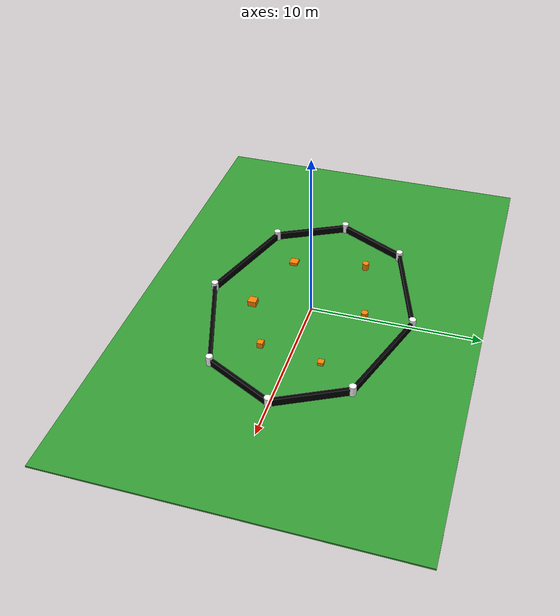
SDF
<?xml version="1.0"?>
<sdf version="1.9">
  <world name="james_oval">

    <plugin filename="gz-sim-physics-system"
      name="gz::sim::systems::Physics" />

    <plugin filename="gz-sim-user-commands-system"
      name="gz::sim::systems::UserCommands" />

    <plugin filename="gz-sim-scene-broadcaster-system"
      name="gz::sim::systems::SceneBroadcaster" />

    <plugin filename="gz-sim-sensors-system"
      name="gz::sim::systems::Sensors">
      <render_engine>ogre2</render_engine>
    </plugin>

    <light name="sun_light" type="directional">
      <cast_shadows>true</cast_shadows>

      <pose>0 0 10 0 0 0</pose>

      <diffuse>1 1 1 1</diffuse>
      <specular>0.2 0.2 0.2 1</specular>

      <attenuation>
        <range>1000</range>
        <constant>0.9</constant>
        <linear>0.01</linear>
        <quadratic>0.001</quadratic>
      </attenuation>

      <direction>0 0 -1</direction>
    </light>

    <model name="ground">
      <static>true</static>
      <pose>0 0 0 0 0 0</pose>
      <link name="link">
        <collision name="collision">
          <geometry>
            <box>
              <size>30 20 0.1</size>
            </box>
          </geometry>
        </collision>
        <visual name="visual">
          <geometry>
            <box>
              <size>30 20 0.1</size>
            </box>
          </geometry>
          <material>
            <ambient>0.2 0.6 0.2 1</ambient>
            <diffuse>0.2 0.6 0.2 1</diffuse>
          </material>
        </visual>
      </link>
    </model>

    <model name="marker1">
      <static>true</static>
      <pose>8 0 0.15 0 0 0</pose>
      <link name="l">
        <collision name="c">
          <geometry>
            <cylinder>
              <radius>0.2</radius>
              <length>1</length>
            </cylinder>
          </geometry>
        </collision>
        <visual name="v">
          <geometry>
            <cylinder>
              <radius>0.2</radius>
              <length>1</length>
            </cylinder>
          </geometry>
          <material>
            <ambient>1 1 1 1</ambient>
          </material>
        </visual>
      </link>
    </model>

    <model name="marker2">
      <static>true</static>
      <pose>6 4 0.15 0 0 0</pose>
      <link name="l">
        <collision name="c">
          <geometry>
            <cylinder>
              <radius>0.2</radius>
              <length>1</length>
            </cylinder>
          </geometry>
        </collision>
        <visual name="v">
          <geometry>
            <cylinder>
              <radius>0.2</radius>
              <length>1</length>
            </cylinder>
          </geometry>
          <material>
            <ambient>1 1 1 1</ambient>
          </material>
        </visual>
      </link>
    </model>

    <model name="marker3">
      <static>true</static>
      <pose>0 6 0.15 0 0 0</pose>
      <link name="l">
        <collision name="c">
          <geometry>
            <cylinder>
              <radius>0.2</radius>
              <length>1</length>
            </cylinder>
          </geometry>
        </collision>
        <visual name="v">
          <geometry>
            <cylinder>
              <radius>0.2</radius>
              <length>1</length>
            </cylinder>
          </geometry>
          <material>
            <ambient>1 1 1 1</ambient>
          </material>
        </visual>
      </link>
    </model>

    <model name="marker4">
      <static>true</static>
      <pose>-6 4 0.15 0 0 0</pose>
      <link name="l">
        <collision name="c">
          <geometry>
            <cylinder>
              <radius>0.2</radius>
              <length>1</length>
            </cylinder>
          </geometry>
        </collision>
        <visual name="v">
          <geometry>
            <cylinder>
              <radius>0.2</radius>
              <length>1</length>
            </cylinder>
          </geometry>
          <material>
            <ambient>1 1 1 1</ambient>
          </material>
        </visual>
      </link>
    </model>

    <model name="marker5">
      <static>true</static>
      <pose>-8 0 0.15 0 0 0</pose>
      <link name="l">
        <collision name="c">
          <geometry>
            <cylinder>
              <radius>0.2</radius>
              <length>1</length>
            </cylinder>
          </geometry>
        </collision>
        <visual name="v">
          <geometry>
            <cylinder>
              <radius>0.2</radius>
              <length>1</length>
            </cylinder>
          </geometry>
          <material>
            <ambient>1 1 1 1</ambient>
          </material>
        </visual>
      </link>
    </model>

    <model name="marker6">
      <static>true</static>
      <pose>-6 -4 0.15 0 0 0</pose>
      <link name="l">
        <collision name="c">
          <geometry>
            <cylinder>
              <radius>0.2</radius>
              <length>1</length>
            </cylinder>
          </geometry>
        </collision>
        <visual name="v">
          <geometry>
            <cylinder>
              <radius>0.2</radius>
              <length>1</length>
            </cylinder>
          </geometry>
          <material>
            <ambient>1 1 1 1</ambient>
          </material>
        </visual>
      </link>
    </model>

    <model name="marker7">
      <static>true</static>
      <pose>0 -6 0.15 0 0 0</pose>
      <link name="l">
        <collision name="c">
          <geometry>
            <cylinder>
              <radius>0.2</radius>
              <length>1</length>
            </cylinder>
          </geometry>
        </collision>
        <visual name="v">
          <geometry>
            <cylinder>
              <radius>0.2</radius>
              <length>1</length>
            </cylinder>
          </geometry>
          <material>
            <ambient>1 1 1 1</ambient>
          </material>
        </visual>
      </link>
    </model>

    <model name="marker8">
      <static>true</static>
      <pose>6 -4 0.15 0 0 0</pose>
      <link name="l">
        <collision name="c">
          <geometry>
            <cylinder>
              <radius>0.2</radius>
              <length>1</length>
            </cylinder>
          </geometry>
        </collision>
        <visual name="v">
          <geometry>
            <cylinder>
              <radius>0.2</radius>
              <length>1</length>
            </cylinder>
          </geometry>
          <material>
            <ambient>1 1 1 1</ambient>
          </material>
        </visual>
      </link>
    </model>

    <model name="cone1">
      <static>true</static>
      <pose>-4.5 2.2 0 0 0 0</pose>
      <link name="link">
        <collision name="collision">
          <geometry>
            <cylinder>
              <radius>0.2</radius>
              <length>1</length>
            </cylinder>
          </geometry>
        </collision>
        <visual name="visual">
          <geometry>
            <cylinder>
              <radius>0.2</radius>
              <length>1</length>
            </cylinder>
          </geometry>
          <material>
            <ambient>1.0 0.5 0.0 1</ambient>
            <diffuse>1.0 0.5 0.0 1</diffuse>
          </material>
        </visual>
      </link>
    </model>

    <model name="cone2">
      <static>true</static>
      <pose>0.0 3.2 0 0 0 0</pose>
      <link name="link">
        <collision name="collision">
          <geometry>
            <cylinder>
              <radius>0.2</radius>
              <length>1</length>
            </cylinder>
          </geometry>
        </collision>
        <visual name="visual">
          <geometry>
            <cylinder>
              <radius>0.2</radius>
              <length>1</length>
            </cylinder>
          </geometry>
          <material>
            <ambient>1.0 0.5 0.0 1</ambient>
            <diffuse>1.0 0.5 0.0 1</diffuse>
          </material>
        </visual>
      </link>
    </model>

    <model name="bucket1">
      <static>true</static>
      <pose>4.3 1.8 0 0 0 0</pose>
      <link name="link">
        <collision name="collision">
          <geometry>
            <box>
              <size>0.35 0.35 0.5</size>
            </box>
          </geometry>
        </collision>
        <visual name="visual">
          <geometry>
            <box>
              <size>0.35 0.35 0.5</size>
            </box>
          </geometry>
          <material>
            <ambient>1.0 0.5 0.0 1</ambient>
            <diffuse>1.0 0.5 0.0 1</diffuse>
          </material>
        </visual>
      </link>
    </model>

    <model name="bucket2">
      <static>true</static>
      <pose>3.9 -1.8 0.15 0 0 0</pose>
      <link name="link">
        <collision name="collision">
          <geometry>
            <box>
              <size>0.35 0.35 0.5</size>
            </box>
          </geometry>
        </collision>
        <visual name="visual">
          <geometry>
            <box>
              <size>0.35 0.35 0.5</size>
            </box>
          </geometry>
          <material>
            <ambient>1.0 0.5 0.0 1</ambient>
            <diffuse>1.0 0.5 0.0 1</diffuse>
          </material>
        </visual>
      </link>
    </model>

    <model name="box1">
      <static>true</static>
      <pose>-3.8 -2.2 0 0 0 0</pose>
      <link name="link">
        <collision name="collision">
          <geometry>
            <box>
              <size>0.5 0.5 0.5</size>
            </box>
          </geometry>
        </collision>
        <visual name="visual">
          <geometry>
            <box>
              <size>0.5 0.5 0.5</size>
            </box>
          </geometry>
          <material>
            <ambient>1.0 0.5 0.0 1</ambient>
            <diffuse>1.0 0.5 0.0 1</diffuse>
          </material>
        </visual>
      </link>
    </model>

    <model name="box2">
      <static>true</static>
      <pose>0.6 -3.4 0.15 0 0 0</pose>
      <link name="link">
        <collision name="collision">
          <geometry>
            <box>
              <size>0.5 0.5 0.5</size>
            </box>
          </geometry>
        </collision>
        <visual name="visual">
          <geometry>
            <box>
              <size>0.5 0.5 0.5</size>
            </box>
          </geometry>
          <material>
            <ambient>1.0 0.5 0.0 1</ambient>
            <diffuse>1.0 0.5 0.0 1</diffuse>
          </material>
        </visual>
      </link>
    </model>

    <!-- Oval walls (aligned to markers) -->
    <model name="oval_walls">
      <static>true</static>

      <!-- Common material -->
      <link name="walls_link">

        <!-- Wall 1 -->
        <collision name="c1">
          <pose>7 2 0 0 0 2.03444</pose>
          <geometry>
            <box>
              <size>4.47214 0.2 1</size>
            </box>
          </geometry>
        </collision>
        <visual name="v1">
          <pose>7 2 0 0 0 2.03444</pose>
          <geometry>
            <box>
              <size>4.47214 0.2 1</size>
            </box>
          </geometry>
          <material>
            <ambient>0 0 0 1</ambient>
          </material>
        </visual>

        <!-- Wall 2 -->
        <collision name="c2">
          <pose>3 5 0 0 0 2.81984</pose>
          <geometry>
            <box>
              <size>6.32456 0.2 1</size>
            </box>
          </geometry>
        </collision>
        <visual name="v2">
          <pose>3 5 0 0 0 2.81984</pose>
          <geometry>
            <box>
              <size>6.32456 0.2 1</size>
            </box>
          </geometry>
          <material>
            <ambient>0 0 0 1</ambient>
          </material>
        </visual>

        <!-- Wall 3 -->
        <collision name="c3">
          <pose>-3 5 0 0 0 -2.81984</pose>
          <geometry>
            <box>
              <size>6.32456 0.2 1</size>
            </box>
          </geometry>
        </collision>
        <visual name="v3">
          <pose>-3 5 0 0 0 -2.81984</pose>
          <geometry>
            <box>
              <size>6.32456 0.2 1</size>
            </box>
          </geometry>
          <material>
            <ambient>0 0 0 1</ambient>
          </material>
        </visual>

        <!-- Wall 4 -->
        <collision name="c4">
          <pose>-7 2 0 0 0 -2.03444</pose>
          <geometry>
            <box>
              <size>4.47214 0.2 1</size>
            </box>
          </geometry>
        </collision>
        <visual name="v4">
          <pose>-7 2 0 0 0 -2.03444</pose>
          <geometry>
            <box>
              <size>4.47214 0.2 1</size>
            </box>
          </geometry>
          <material>
            <ambient>0 0 0 1</ambient>
          </material>
        </visual>

        <!-- Wall 5 -->
        <collision name="c5">
          <pose>-7 -2 0 0 0 -1.10715</pose>
          <geometry>
            <box>
              <size>4.47214 0.2 1</size>
            </box>
          </geometry>
        </collision>
        <visual name="v5">
          <pose>-7 -2 0 0 0 -1.10715</pose>
          <geometry>
            <box>
              <size>4.47214 0.2 1</size>
            </box>
          </geometry>
          <material>
            <ambient>0 0 0 1</ambient>
          </material>
        </visual>

        <!-- Wall 6 -->
        <collision name="c6">
          <pose>-3 -5 0 0 0 -0.32175</pose>
          <geometry>
            <box>
              <size>6.32456 0.2 1</size>
            </box>
          </geometry>
        </collision>
        <visual name="v6">
          <pose>-3 -5 0 0 0 -0.32175</pose>
          <geometry>
            <box>
              <size>6.32456 0.2 1</size>
            </box>
          </geometry>
          <material>
            <ambient>0 0 0 1</ambient>
          </material>
        </visual>

        <!-- Wall 7 -->
        <collision name="c7">
          <pose>3 -5 0 0 0 0.32175</pose>
          <geometry>
            <box>
              <size>6.32456 0.2 1</size>
            </box>
          </geometry>
        </collision>
        <visual name="v7">
          <pose>3 -5 0 0 0 0.32175</pose>
          <geometry>
            <box>
              <size>6.32456 0.2 1</size>
            </box>
          </geometry>
          <material>
            <ambient>0 0 0 1</ambient>
          </material>
        </visual>

        <!-- Wall 8 -->
        <collision name="c8">
          <pose>7 -2 0 0 0 1.10715</pose>
          <geometry>
            <box>
              <size>4.47214 0.2 1</size>
            </box>
          </geometry>
        </collision>
        <visual name="v8">
          <pose>7 -2 0 0 0 1.10715</pose>
          <geometry>
            <box>
              <size>4.47214 0.2 1</size>
            </box>
          </geometry>
          <material>
            <ambient>0 0 0 1</ambient>
          </material>
        </visual>

      </link>
    </model>
  </world>
</sdf>
